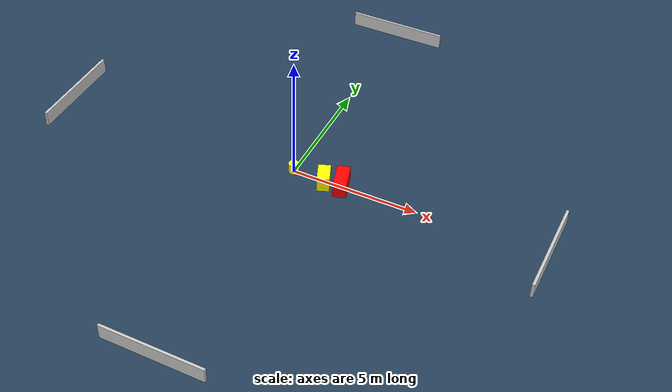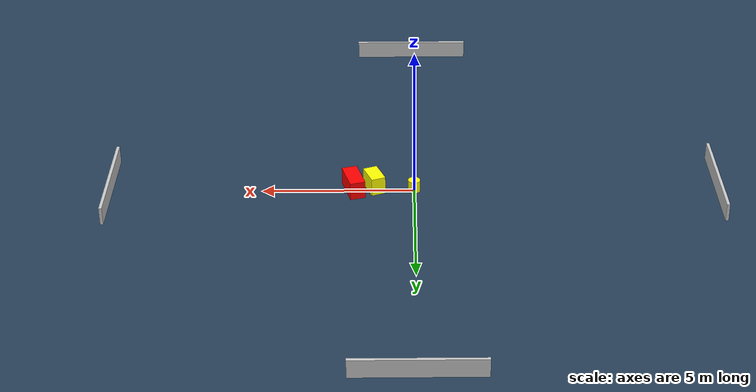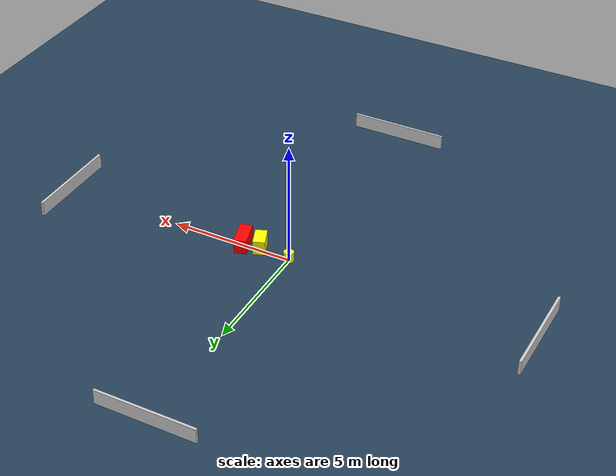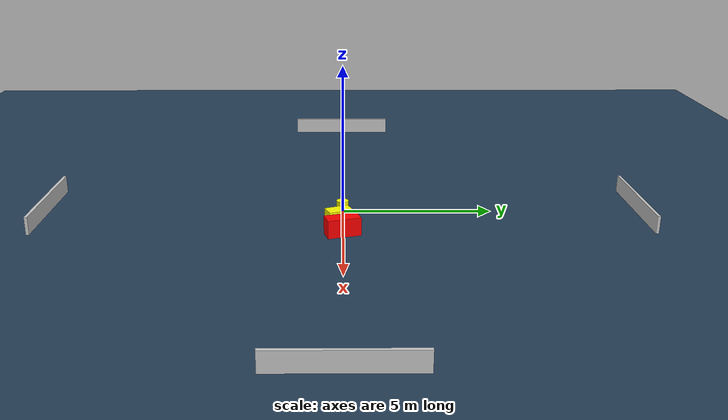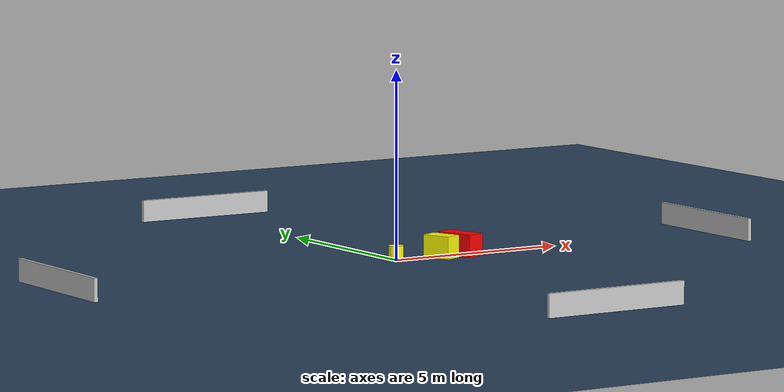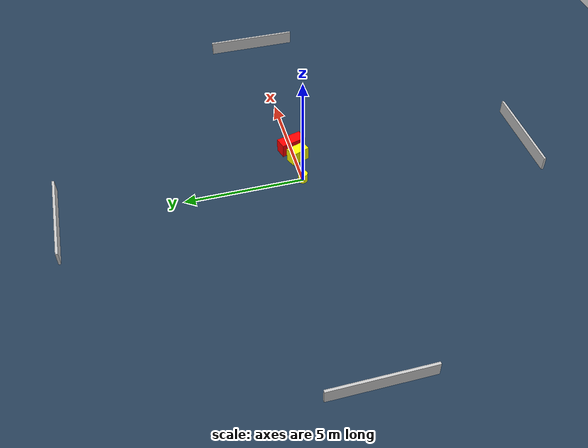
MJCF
<?xml version="1.0" ?>
<mujoco model="generated_environment">
  <option timestep="0.01" integrator="RK4" cone="elliptic"/>
  <default>
    <geom density="1"/>
  </default>
  <asset>
    <texture builtin="gradient" height="3072" name="skybox" rgb1="0.3 0.5 0.7" rgb2="0 0 0" type="skybox" width="512"/>
    <texture builtin="checker" height="300" name="groundplane" rgb1="0.2 0.3 0.4" rgb2="0.1 0.2 0.3" type="2d" width="300"/>
    <material name="groundplane" reflectance="0.2" texrepeat="5 5" texture="groundplane"/>
  </asset>
  <worldbody>
    <light dir="0 0 -1" directional="true" pos="0 0 1.5"/>
    <geom condim="3" friction="0.5 0.005 0.001" material="groundplane" name="floor" pos="0 0 0" size="0 0 0.05" type="plane"/>
    <body name="walls">
      <geom name="wall_1" condim="4" pos="-10.0 0.0 0.3" rgba="0.800000011920929 0.800000011920929 0.800000011920929 1.0" size="0.05 2.0 0.3" type="box"/>
      <geom name="wall_2" condim="4" pos="10.0 0.0 0.3" rgba="0.800000011920929 0.800000011920929 0.800000011920929 1.0" size="0.05 2.0 0.3" type="box"/>
      <geom name="wall_3" condim="4" pos="0.0 -10.0 0.3" rgba="0.800000011920929 0.800000011920929 0.800000011920929 1.0" size="2.0 0.05 0.3" type="box"/>
      <geom name="wall_4" condim="4" pos="0.0 10.0 0.3" rgba="0.800000011920929 0.800000011920929 0.800000011920929 1.0" size="2.0 0.05 0.3" type="box"/>
    </body>
    <body name="robot">
      <joint name="joint_x" type="slide" pos="0 0 0" axis="1 0 0"/>
      <joint name="joint_y" type="slide" pos="0 0 0" axis="0 1 0"/>
      <geom name="robot" type="cylinder" pos="0.0 0.0 0.2" size="0.2 0.2 0.0" mass="5.0" friction="1.0 0.005 0.0001" condim="4" rgba="1.0 1.0 0.0 1.0"/>
    </body>
    <body name="obstacle_1_movable">
      <geom name="obstacle_1_movable" condim="4" pos="1.3167520027240727 -0.1278180767894992 0.3" euler="0 0 21.182951253768433" friction="0.0 0.005 0.001" rgba="1.0 1.0 0.0 1.0" size="0.23838628545967266 0.4036078117332226 0.3" type="box" mass="0.1"/>
      <joint type="free"/>
    </body>
    <body name="obstacle_2_static">
      <geom name="obstacle_2_static" condim="4" pos="1.9970405891124148 -0.010690466287136541 0.3" euler="0 0 285.83742461376806" friction="0.0 0.005 0.001" rgba="1.0 0.0 0.0 1.0" size="0.5465558187334546 0.25445160035267345 0.3" type="box"/>
    </body>
  </worldbody>
  <actuator>
    <motor name="actuator_x" joint="joint_x" gear="1" ctrlrange="-1 1"/>
    <motor name="actuator_y" joint="joint_y" gear="1" ctrlrange="-1 1"/>
  </actuator>
</mujoco>
